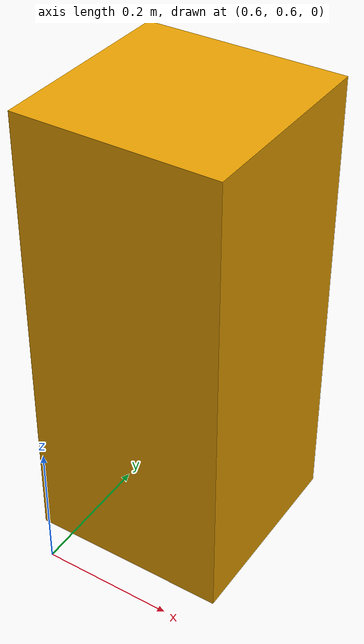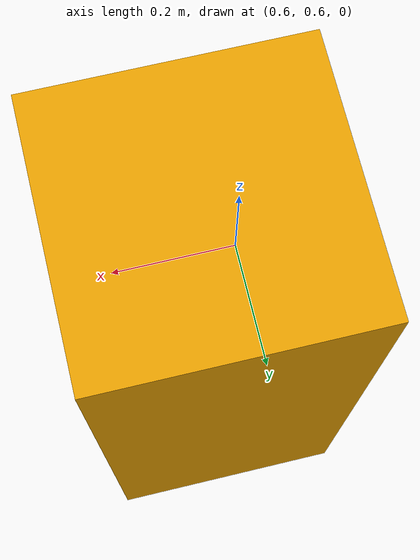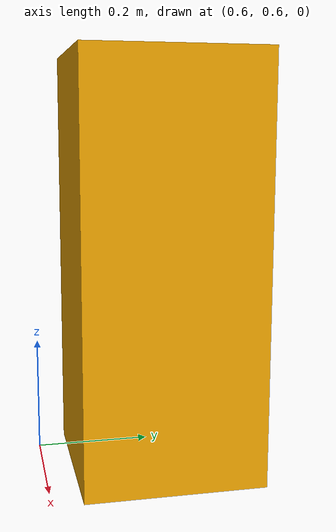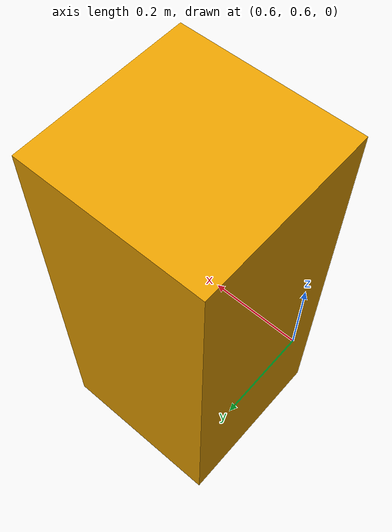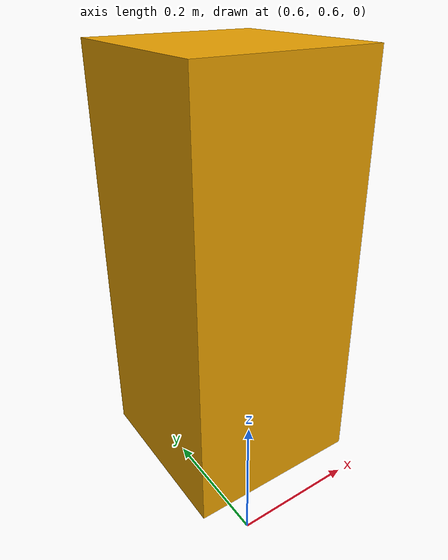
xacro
<?xml version="1.0"?>
<robot xmlns:xacro="http://ros.org/wiki/xacro" name="obstacle" >
    <xacro:property name="x" value="0.7"/>
    <xacro:property name="y" value="0.8"/>
    <xacro:property name="z" value="0.0"/>
    <xacro:property name="a" value="0.3"/>
    <xacro:property name="b" value="0.3"/>
    <xacro:property name="c" value="0.7"/>

    <link name="obstacle">
        <visual>
        <origin xyz="${x} ${y} ${z+c/2}" rpy="0 0 0"/>
        <geometry>
            <box size="${a} ${b} ${c}" />
        </geometry>
        </visual>
        <collision>
        <origin xyz="${x} ${y} ${z+c/2}" rpy="0 0 0"/>
        <geometry>
            <box size="${a} ${b} ${c}" />
        </geometry>
        </collision>
        <inertial>
        <origin xyz="${x} ${y} ${z+c/2}" rpy="0 0 0"/>
        <mass value="1"/>
        <inertia
            ixx="1.0" ixy="0.0" ixz="0.0"
            iyy="1.0" iyz="0.0"
            izz="1.0"/>
        </inertial>
    </link>
</robot>
